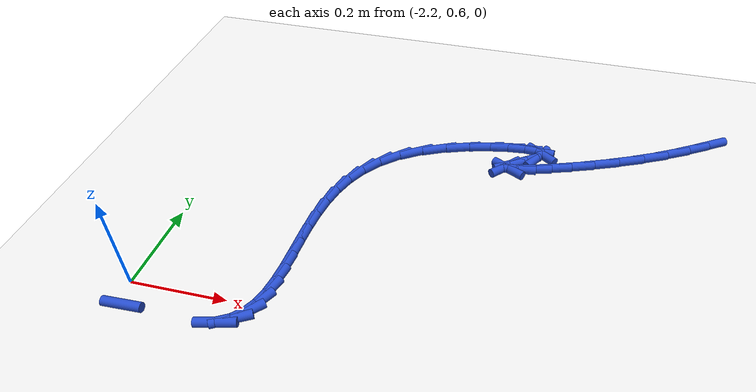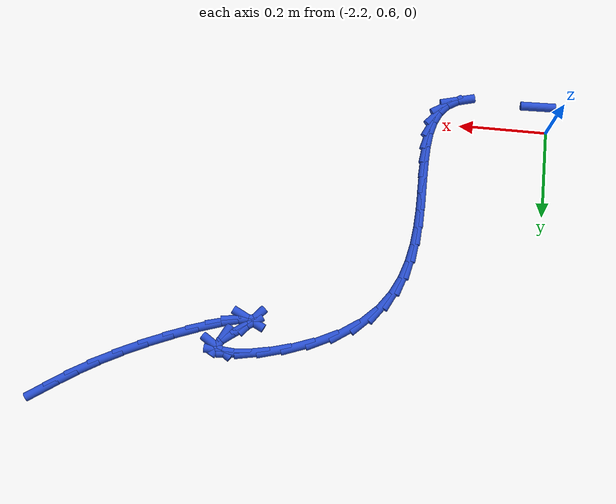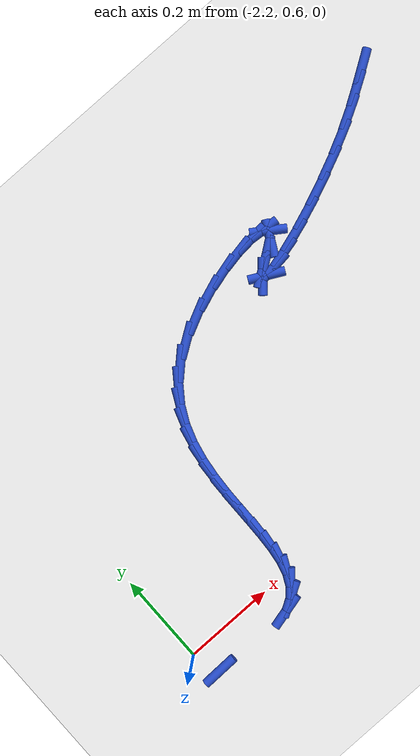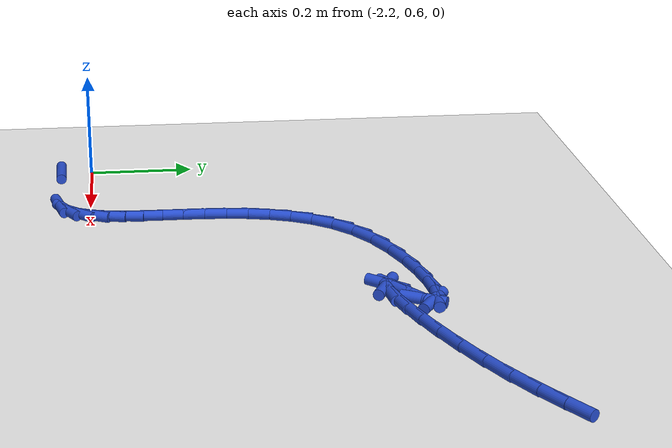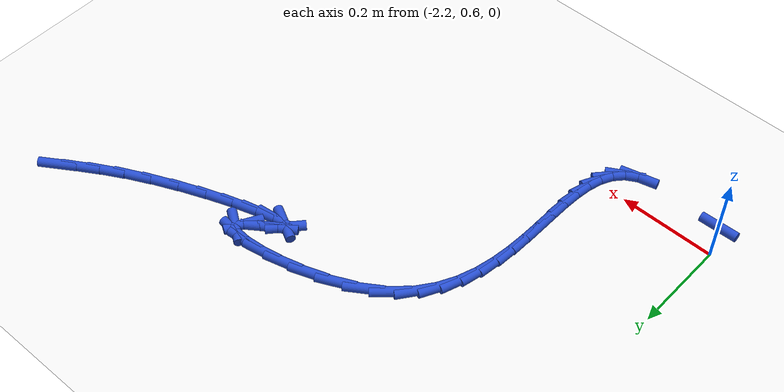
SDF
<sdf version="1.6">
 <world name="default">
  <model name="ground_plane">
   <static>1</static>
   <link name="link">
    <collision name="collision">
     <geometry><plane><normal>0 0 1</normal><size>100 100</size></plane></geometry>
     <surface><friction><ode><mu>100</mu><mu2>50</mu2></ode></friction></surface>
    </collision>
    <visual name="visual">
     <cast_shadows>0</cast_shadows>
     <geometry><plane><normal>0 0 1</normal><size>100 100</size></plane></geometry>
     <material>
      <script><uri>file://media/materials/scripts/gazebo.material</uri><name>Gazebo/WhiteGlow</name></script>
     </material>
    </visual>
   </link>
  </model>
  <model name="line">
   <link name="link_58">
    <pose>-1.1201106310315265 1.2893519707113767 0.01 0 1.57 0.5821864242988005</pose>
    <collision name="collision">
     <geometry><cylinder><radius>0.01</radius><length>0.08</length></cylinder></geometry>
    </collision>
    <visual name="visual">
     <material>
      <script><name>Gazebo/Blue</name><uri>file://media/materials/scripts/gazebo.material</uri></script>
     </material>
     <geometry><cylinder><radius>0.01</radius><length>0.08</length></cylinder></geometry>
    </visual>
   </link>
   <link name="link_59">
    <pose>-1.1594641545002602 1.2634456298737695 0.01 0 1.57 0.5556542393024929</pose>
    <collision name="collision">
     <geometry><cylinder><radius>0.01</radius><length>0.08</length></cylinder></geometry>
    </collision>
    <visual name="visual">
     <material>
      <script><name>Gazebo/Blue</name><uri>file://media/materials/scripts/gazebo.material</uri></script>
     </material>
     <geometry><cylinder><radius>0.01</radius><length>0.08</length></cylinder></geometry>
    </visual>
   </link>
   <link name="link_60">
    <pose>-1.2032529193333525 1.2362566596033826 0.01 0 1.57 0.5112071678785837</pose>
    <collision name="collision">
     <geometry><cylinder><radius>0.01</radius><length>0.08</length></cylinder></geometry>
    </collision>
    <visual name="visual">
     <material>
      <script><name>Gazebo/Blue</name><uri>file://media/materials/scripts/gazebo.material</uri></script>
     </material>
     <geometry><cylinder><radius>0.01</radius><length>0.08</length></cylinder></geometry>
    </visual>
   </link>
   <link name="link_61">
    <pose>-1.2516941934568433 1.2090837857300907 0.01 0 1.57 0.46053968597940514</pose>
    <collision name="collision">
     <geometry><cylinder><radius>0.01</radius><length>0.08</length></cylinder></geometry>
    </collision>
    <visual name="visual">
     <material>
      <script><name>Gazebo/Blue</name><uri>file://media/materials/scripts/gazebo.material</uri></script>
     </material>
     <geometry><cylinder><radius>0.01</radius><length>0.08</length></cylinder></geometry>
    </visual>
   </link>
   <link name="link_62">
    <pose>-1.3041376539338914 1.1830654778337149 0.01 0 1.57 0.41908297755803303</pose>
    <collision name="collision">
     <geometry><cylinder><radius>0.01</radius><length>0.08</length></cylinder></geometry>
    </collision>
    <visual name="visual">
     <material>
      <script><name>Gazebo/Blue</name><uri>file://media/materials/scripts/gazebo.material</uri></script>
     </material>
     <geometry><cylinder><radius>0.01</radius><length>0.08</length></cylinder></geometry>
    </visual>
   </link>
   <link name="link_63">
    <pose>-1.3581397911256947 1.1590089786580244 0.01 0 1.57 0.383279070164344</pose>
    <collision name="collision">
     <geometry><cylinder><radius>0.01</radius><length>0.08</length></cylinder></geometry>
    </collision>
    <visual name="visual">
     <material>
      <script><name>Gazebo/Blue</name><uri>file://media/materials/scripts/gazebo.material</uri></script>
     </material>
     <geometry><cylinder><radius>0.01</radius><length>0.08</length></cylinder></geometry>
    </visual>
   </link>
   <link name="link_64">
    <pose>-1.4110351205067233 1.137680529059293 0.01 0 1.57 0.34825375251334034</pose>
    <collision name="collision">
     <geometry><cylinder><radius>0.01</radius><length>0.08</length></cylinder></geometry>
    </collision>
    <visual name="visual">
     <material>
      <script><name>Gazebo/Blue</name><uri>file://media/materials/scripts/gazebo.material</uri></script>
     </material>
     <geometry><cylinder><radius>0.01</radius><length>0.08</length></cylinder></geometry>
    </visual>
   </link>
   <link name="link_65">
    <pose>-1.4601581575514486 1.119846369893794 0.01 0 1.57 0.3078816084806811</pose>
    <collision name="collision">
     <geometry><cylinder><radius>0.01</radius><length>0.08</length></cylinder></geometry>
    </collision>
    <visual name="visual">
     <material>
      <script><name>Gazebo/Blue</name><uri>file://media/materials/scripts/gazebo.material</uri></script>
     </material>
     <geometry><cylinder><radius>0.01</radius><length>0.08</length></cylinder></geometry>
    </visual>
   </link>
   <link name="link_66">
    <pose>-1.502843417734342 1.1062727420178 0.01 0 1.57 0.2492160813838277</pose>
    <collision name="collision">
     <geometry><cylinder><radius>0.01</radius><length>0.08</length></cylinder></geometry>
    </collision>
    <visual name="visual">
     <material>
      <script><name>Gazebo/Blue</name><uri>file://media/materials/scripts/gazebo.material</uri></script>
     </material>
     <geometry><cylinder><radius>0.01</radius><length>0.08</length></cylinder></geometry>
    </visual>
   </link>
   <link name="link_67">
    <pose>-1.5364254165298727 1.0977258862875852 0.01 0 1.57 0.12558194365086814</pose>
    <collision name="collision">
     <geometry><cylinder><radius>0.01</radius><length>0.08</length></cylinder></geometry>
    </collision>
    <visual name="visual">
     <material>
      <script><name>Gazebo/Blue</name><uri>file://media/materials/scripts/gazebo.material</uri></script>
     </material>
     <geometry><cylinder><radius>0.01</radius><length>0.08</length></cylinder></geometry>
    </visual>
   </link>
   <link name="link_68">
    <pose>-1.558238669412513 1.0949720435594226 0.01 0 1.57 -0.4761338491387476</pose>
    <collision name="collision">
     <geometry><cylinder><radius>0.01</radius><length>0.08</length></cylinder></geometry>
    </collision>
    <visual name="visual">
     <material>
      <script><name>Gazebo/Blue</name><uri>file://media/materials/scripts/gazebo.material</uri></script>
     </material>
     <geometry><cylinder><radius>0.01</radius><length>0.08</length></cylinder></geometry>
    </visual>
   </link>
   <link name="link_69">
    <pose>-1.5656176918567333 1.0987774546895857 0.01 0 1.57 0.8529262781482487</pose>
    <collision name="collision">
     <geometry><cylinder><radius>0.01</radius><length>0.08</length></cylinder></geometry>
    </collision>
    <visual name="visual">
     <material>
      <script><name>Gazebo/Blue</name><uri>file://media/materials/scripts/gazebo.material</uri></script>
     </material>
     <geometry><cylinder><radius>0.01</radius><length>0.08</length></cylinder></geometry>
    </visual>
   </link>
   <link name="link_70">
    <pose>-1.5558969993370042 1.1099083605343472 0.01 0 1.57 0.595841687415803</pose>
    <collision name="collision">
     <geometry><cylinder><radius>0.01</radius><length>0.08</length></cylinder></geometry>
    </collision>
    <visual name="visual">
     <material>
      <script><name>Gazebo/Blue</name><uri>file://media/materials/scripts/gazebo.material</uri></script>
     </material>
     <geometry><cylinder><radius>0.01</radius><length>0.08</length></cylinder></geometry>
    </visual>
   </link>
   <link name="link_71">
    <pose>-1.5286377466025152 1.1283914834487074 0.01 0 1.57 0.6294370940099295</pose>
    <collision name="collision">
     <geometry><cylinder><radius>0.01</radius><length>0.08</length></cylinder></geometry>
    </collision>
    <visual name="visual">
     <material>
      <script><name>Gazebo/Blue</name><uri>file://media/materials/scripts/gazebo.material</uri></script>
     </material>
     <geometry><cylinder><radius>0.01</radius><length>0.08</length></cylinder></geometry>
    </visual>
   </link>
   <link name="link_72">
    <pose>-1.5012784057374926 1.148316003634057 0.01 0 1.57 1.08370847268191</pose>
    <collision name="collision">
     <geometry><cylinder><radius>0.01</radius><length>0.08</length></cylinder></geometry>
    </collision>
    <visual name="visual">
     <material>
      <script><name>Gazebo/Blue</name><uri>file://media/materials/scripts/gazebo.material</uri></script>
     </material>
     <geometry><cylinder><radius>0.01</radius><length>0.08</length></cylinder></geometry>
    </visual>
   </link>
   <link name="link_73">
    <pose>-1.4936017450227885 1.1628097508448605 0.01 0 1.57 -0.5970294302344263</pose>
    <collision name="collision">
     <geometry><cylinder><radius>0.01</radius><length>0.08</length></cylinder></geometry>
    </collision>
    <visual name="visual">
     <material>
      <script><name>Gazebo/Blue</name><uri>file://media/materials/scripts/gazebo.material</uri></script>
     </material>
     <geometry><cylinder><radius>0.01</radius><length>0.08</length></cylinder></geometry>
    </visual>
   </link>
   <link name="link_74">
    <pose>-1.5056288193814804 1.1709855721664628 0.01 0 1.57 -0.0772614202629387</pose>
    <collision name="collision">
     <geometry><cylinder><radius>0.01</radius><length>0.08</length></cylinder></geometry>
    </collision>
    <visual name="visual">
     <material>
      <script><name>Gazebo/Blue</name><uri>file://media/materials/scripts/gazebo.material</uri></script>
     </material>
     <geometry><cylinder><radius>0.01</radius><length>0.08</length></cylinder></geometry>
    </visual>
   </link>
   <link name="link_75">
    <pose>-1.5334702829819002 1.1731409335798426 0.01 0 1.57 0.08947496645256169</pose>
    <collision name="collision">
     <geometry><cylinder><radius>0.01</radius><length>0.08</length></cylinder></geometry>
    </collision>
    <visual name="visual">
     <material>
      <script><name>Gazebo/Blue</name><uri>file://media/materials/scripts/gazebo.material</uri></script>
     </material>
     <geometry><cylinder><radius>0.01</radius><length>0.08</length></cylinder></geometry>
    </visual>
   </link>
   <link name="link_76">
    <pose>-1.5732367899923816 1.169573301065979 0.01 0 1.57 0.18595914539488775</pose>
    <collision name="collision">
     <geometry><cylinder><radius>0.01</radius><length>0.08</length></cylinder></geometry>
    </collision>
    <visual name="visual">
     <material>
      <script><name>Gazebo/Blue</name><uri>file://media/materials/scripts/gazebo.material</uri></script>
     </material>
     <geometry><cylinder><radius>0.01</radius><length>0.08</length></cylinder></geometry>
    </visual>
   </link>
   <link name="link_77">
    <pose>-1.6210389945812567 1.1605801406058518 0.01 0 1.57 0.26541753619041364</pose>
    <collision name="collision">
     <geometry><cylinder><radius>0.01</radius><length>0.08</length></cylinder></geometry>
    </collision>
    <visual name="visual">
     <material>
      <script><name>Gazebo/Blue</name><uri>file://media/materials/scripts/gazebo.material</uri></script>
     </material>
     <geometry><cylinder><radius>0.01</radius><length>0.08</length></cylinder></geometry>
    </visual>
   </link>
   <link name="link_78">
    <pose>-1.67298755091686 1.1464589181804385 0.01 0 1.57 0.3482291430202658</pose>
    <collision name="collision">
     <geometry><cylinder><radius>0.01</radius><length>0.08</length></cylinder></geometry>
    </collision>
    <visual name="visual">
     <material>
      <script><name>Gazebo/Blue</name><uri>file://media/materials/scripts/gazebo.material</uri></script>
     </material>
     <geometry><cylinder><radius>0.01</radius><length>0.08</length></cylinder></geometry>
    </visual>
   </link>
   <link name="link_79">
    <pose>-1.7251931131675233 1.1275070997707197 0.01 0 1.57 0.45035727830083616</pose>
    <collision name="collision">
     <geometry><cylinder><radius>0.01</radius><length>0.08</length></cylinder></geometry>
    </collision>
    <visual name="visual">
     <material>
      <script><name>Gazebo/Blue</name><uri>file://media/materials/scripts/gazebo.material</uri></script>
     </material>
     <geometry><cylinder><radius>0.01</radius><length>0.08</length></cylinder></geometry>
    </visual>
   </link>
   <link name="link_80">
    <pose>-1.7737663355015796 1.1040221513576738 0.01 0 1.57 0.591687997035373</pose>
    <collision name="collision">
     <geometry><cylinder><radius>0.01</radius><length>0.08</length></cylinder></geometry>
    </collision>
    <visual name="visual">
     <material>
      <script><name>Gazebo/Blue</name><uri>file://media/materials/scripts/gazebo.material</uri></script>
     </material>
     <geometry><cylinder><radius>0.01</radius><length>0.08</length></cylinder></geometry>
    </visual>
   </link>
   <link name="link_81">
    <pose>-1.8149994211370908 1.076313387995146 0.01 0 1.57 0.7639928992509496</pose>
    <collision name="collision">
     <geometry><cylinder><radius>0.01</radius><length>0.08</length></cylinder></geometry>
    </collision>
    <visual name="visual">
     <material>
      <script><name>Gazebo/Blue</name><uri>file://media/materials/scripts/gazebo.material</uri></script>
     </material>
     <geometry><cylinder><radius>0.01</radius><length>0.08</length></cylinder></geometry>
    </visual>
   </link>
   <link name="link_82">
    <pose>-1.8478263573905844 1.0448625447652125 0.01 0 1.57 0.9382066611999026</pose>
    <collision name="collision">
     <geometry><cylinder><radius>0.01</radius><length>0.08</length></cylinder></geometry>
    </collision>
    <visual name="visual">
     <material>
      <script><name>Gazebo/Blue</name><uri>file://media/materials/scripts/gazebo.material</uri></script>
     </material>
     <geometry><cylinder><radius>0.01</radius><length>0.08</length></cylinder></geometry>
    </visual>
   </link>
   <link name="link_83">
    <pose>-1.8731772279396504 1.010281634993022 0.01 0 1.57 1.1005663036138182</pose>
    <collision name="collision">
     <geometry><cylinder><radius>0.01</radius><length>0.08</length></cylinder></geometry>
    </collision>
    <visual name="visual">
     <material>
      <script><name>Gazebo/Blue</name><uri>file://media/materials/scripts/gazebo.material</uri></script>
     </material>
     <geometry><cylinder><radius>0.01</radius><length>0.08</length></cylinder></geometry>
    </visual>
   </link>
   <link name="link_84">
    <pose>-1.892031339915804 0.9731858846467707 0.01 0 1.57 1.241260515323911</pose>
    <collision name="collision">
     <geometry><cylinder><radius>0.01</radius><length>0.08</length></cylinder></geometry>
    </collision>
    <visual name="visual">
     <material>
      <script><name>Gazebo/Blue</name><uri>file://media/materials/scripts/gazebo.material</uri></script>
     </material>
     <geometry><cylinder><radius>0.01</radius><length>0.08</length></cylinder></geometry>
    </visual>
   </link>
   <link name="link_85">
    <pose>-1.9053680004505613 0.9341905196946535 0.01 0 1.57 1.35573906647768</pose>
    <collision name="collision">
     <geometry><cylinder><radius>0.01</radius><length>0.08</length></cylinder></geometry>
    </collision>
    <visual name="visual">
     <material>
      <script><name>Gazebo/Blue</name><uri>file://media/materials/scripts/gazebo.material</uri></script>
     </material>
     <geometry><cylinder><radius>0.01</radius><length>0.08</length></cylinder></geometry>
    </visual>
   </link>
   <link name="link_86">
    <pose>-1.9141665166754374 0.8939107661048671 0.01 0 1.57 1.443531406932914</pose>
    <collision name="collision">
     <geometry><cylinder><radius>0.01</radius><length>0.08</length></cylinder></geometry>
    </collision>
    <visual name="visual">
     <material>
      <script><name>Gazebo/Blue</name><uri>file://media/materials/scripts/gazebo.material</uri></script>
     </material>
     <geometry><cylinder><radius>0.01</radius><length>0.08</length></cylinder></geometry>
    </visual>
   </link>
   <link name="link_87">
    <pose>-1.9194061957219477 0.8529618498456066 0.01 0 1.57 1.5060099528140576</pose>
    <collision name="collision">
     <geometry><cylinder><radius>0.01</radius><length>0.08</length></cylinder></geometry>
    </collision>
    <visual name="visual">
     <material>
      <script><name>Gazebo/Blue</name><uri>file://media/materials/scripts/gazebo.material</uri></script>
     </material>
     <geometry><cylinder><radius>0.01</radius><length>0.08</length></cylinder></geometry>
    </visual>
   </link>
   <link name="link_88">
    <pose>-1.922066344721608 0.8119589968850682 0.01 0 1.57 1.5445934948866262</pose>
    <collision name="collision">
     <geometry><cylinder><radius>0.01</radius><length>0.08</length></cylinder></geometry>
    </collision>
    <visual name="visual">
     <material>
      <script><name>Gazebo/Blue</name><uri>file://media/materials/scripts/gazebo.material</uri></script>
     </material>
     <geometry><cylinder><radius>0.01</radius><length>0.08</length></cylinder></geometry>
    </visual>
   </link>
   <link name="link_89">
    <pose>-1.9231262708059351 0.7715174331914472 0.01 0 1.57 1.5596161035206093</pose>
    <collision name="collision">
     <geometry><cylinder><radius>0.01</radius><length>0.08</length></cylinder></geometry>
    </collision>
    <visual name="visual">
     <material>
      <script><name>Gazebo/Blue</name><uri>file://media/materials/scripts/gazebo.material</uri></script>
     </material>
     <geometry><cylinder><radius>0.01</radius><length>0.08</length></cylinder></geometry>
    </visual>
   </link>
   <link name="link_90">
    <pose>-1.9235652811064436 0.7322523847329401 0.01 0 1.57 1.5495203470708574</pose>
    <collision name="collision">
     <geometry><cylinder><radius>0.01</radius><length>0.08</length></cylinder></geometry>
    </collision>
    <visual name="visual">
     <material>
      <script><name>Gazebo/Blue</name><uri>file://media/materials/scripts/gazebo.material</uri></script>
     </material>
     <geometry><cylinder><radius>0.01</radius><length>0.08</length></cylinder></geometry>
    </visual>
   </link>
   <link name="link_91">
    <pose>-1.9243626827546496 0.6947790774777421 0.01 0 1.57 1.5099839493675415</pose>
    <collision name="collision">
     <geometry><cylinder><radius>0.01</radius><length>0.08</length></cylinder></geometry>
    </collision>
    <visual name="visual">
     <material>
      <script><name>Gazebo/Blue</name><uri>file://media/materials/scripts/gazebo.material</uri></script>
     </material>
     <geometry><cylinder><radius>0.01</radius><length>0.08</length></cylinder></geometry>
    </visual>
   </link>
   <link name="link_92">
    <pose>-1.926497782882068 0.659712737394049 0.01 0 1.57 1.432743467348962</pose>
    <collision name="collision">
     <geometry><cylinder><radius>0.01</radius><length>0.08</length></cylinder></geometry>
    </collision>
    <visual name="visual">
     <material>
      <script><name>Gazebo/Blue</name><uri>file://media/materials/scripts/gazebo.material</uri></script>
     </material>
     <geometry><cylinder><radius>0.01</radius><length>0.08</length></cylinder></geometry>
    </visual>
   </link>
   <link name="link_93">
    <pose>-1.9309498886202157 0.6276685904500567 0.01 0 1.57 1.3045072831148112</pose>
    <collision name="collision">
     <geometry><cylinder><radius>0.01</radius><length>0.08</length></cylinder></geometry>
    </collision>
    <visual name="visual">
     <material>
      <script><name>Gazebo/Blue</name><uri>file://media/materials/scripts/gazebo.material</uri></script>
     </material>
     <geometry><cylinder><radius>0.01</radius><length>0.08</length></cylinder></geometry>
    </visual>
   </link>
   <link name="link_94">
    <pose>-1.9386983071006072 0.5992618626139611 0.01 0 1.57 1.108905755260092</pose>
    <collision name="collision">
     <geometry><cylinder><radius>0.01</radius><length>0.08</length></cylinder></geometry>
    </collision>
    <visual name="visual">
     <material>
      <script><name>Gazebo/Blue</name><uri>file://media/materials/scripts/gazebo.material</uri></script>
     </material>
     <geometry><cylinder><radius>0.01</radius><length>0.08</length></cylinder></geometry>
    </visual>
   </link>
   <link name="link_95">
    <pose>-1.9507223454547589 0.5751077798539578 0.01 0 1.57 0.8402381477647437</pose>
    <collision name="collision">
     <geometry><cylinder><radius>0.01</radius><length>0.08</length></cylinder></geometry>
    </collision>
    <visual name="visual">
     <material>
      <script><name>Gazebo/Blue</name><uri>file://media/materials/scripts/gazebo.material</uri></script>
     </material>
     <geometry><cylinder><radius>0.01</radius><length>0.08</length></cylinder></geometry>
    </visual>
   </link>
   <link name="link_96">
    <pose>-1.9680013108141865 0.5558215681382425 0.01 0 1.57 0.5308332444847561</pose>
    <collision name="collision">
     <geometry><cylinder><radius>0.01</radius><length>0.08</length></cylinder></geometry>
    </collision>
    <visual name="visual">
     <material>
      <script><name>Gazebo/Blue</name><uri>file://media/materials/scripts/gazebo.material</uri></script>
     </material>
     <geometry><cylinder><radius>0.01</radius><length>0.08</length></cylinder></geometry>
    </visual>
   </link>
   <link name="link_97">
    <pose>-1.9915145103104053 0.5420184534350112 0.01 0 1.57 0.2459315151775736</pose>
    <collision name="collision">
     <geometry><cylinder><radius>0.01</radius><length>0.08</length></cylinder></geometry>
    </collision>
    <visual name="visual">
     <material>
      <script><name>Gazebo/Blue</name><uri>file://media/materials/scripts/gazebo.material</uri></script>
     </material>
     <geometry><cylinder><radius>0.01</radius><length>0.08</length></cylinder></geometry>
    </visual>
   </link>
   <link name="link_102">
    <pose>-2.178108825865015 0.5400709780286622 0.01 0 1.57 0.02353382765656031</pose>
    <collision name="collision">
     <geometry><cylinder><radius>0.01</radius><length>0.08</length></cylinder></geometry>
    </collision>
    <visual name="visual">
     <material>
      <script><name>Gazebo/Blue</name><uri>file://media/materials/scripts/gazebo.material</uri></script>
     </material>
     <geometry><cylinder><radius>0.01</radius><length>0.08</length></cylinder></geometry>
    </visual>
   </link>
  </model>
 </world>
</sdf>
